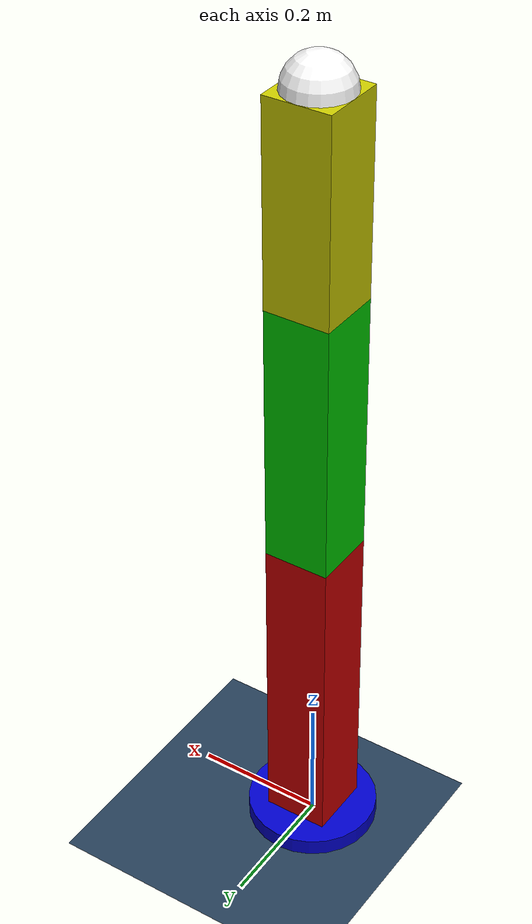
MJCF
<?xml version="1.0"?>
<mujoco model="rrr_scene">
  <include file="rrr.xml"/>
  <visual>
    <headlight diffuse="0.6 0.6 0.6" ambient="0.3 0.3 0.3" specular="0 0 0"/>
    <rgba haze="0.15 0.25 0.35 1"/>
    <global azimuth="120" elevation="-20"/>
  </visual>
  <asset>
    <texture type="skybox" builtin="gradient" rgb1="0.3 0.5 0.7" rgb2="0 0 0" width="512" height="3072"/>
    <texture type="2d" name="groundplane" builtin="checker" mark="edge" rgb1="0.2 0.3 0.4" rgb2="0.1 0.2 0.3" markrgb="0.8 0.8 0.8" width="300" height="300"/>
    <material name="groundplane" texture="groundplane" texuniform="true" texrepeat="5 5" reflectance="0.2"/>
  </asset>
  <worldbody>
    <light pos="0 0 1.5" dir="0 0 -1" directional="true"/>
    <geom name="floor" size="0 0 0.05" type="plane" material="groundplane"/>
  </worldbody>
</mujoco>

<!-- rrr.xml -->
<mujoco model="rrr_robot">
  <compiler angle="radian" inertiafromgeom="true"/>
  <default>
    <default class="joint">
      <joint armature="0.1" damping="1" range="-3.14 3.14"/>
      <general biastype="affine" ctrlrange="-6.28 6.28" dyntype="none" forcerange="-87 87"/>
    </default>
  </default>
  <worldbody>
    <!-- Base -->
    <body gravcomp="1" name="base_link" pos="0 0 0">
      <geom type="cylinder" size="0.1 0.025" rgba="0 0 0.8 1"/>
      <!-- Link 1 -->
      <body gravcomp="1" name="link1" pos="0 0 0.025">
        <joint name="joint1" class="joint" axis="0 0 1"/>
        <geom type="box" size="0.05 0.05 0.25" pos="0 0 0.25" rgba="0.8 0 0 1"/>
        <!-- Link 2 -->
        <body gravcomp="1" name="link2" pos="0 0 0.5">
          <joint name="joint2" class="joint" axis="0 1 0"/>
          <geom type="box" size="0.05 0.05 0.2" pos="0 0 0.2" rgba="0 0.8 0 1"/>
          <!-- Link 3 -->
          <body gravcomp="1" name="link3" pos="0 0 0.4">
            <joint name="joint3" class="joint" axis="0 1 0"/>
            <geom type="box" size="0.05 0.05 0.15" pos="0 0 0.15" rgba="0.8 0.8 0 1"/>
            <!-- End Effector -->
            <body gravcomp="1" name="end_effector" pos="0 0 0.3">
              <geom type="sphere" size="0.05" rgba="1 1 1 1"/>
            </body>
          </body>
        </body>
      </body>
    </body>
  </worldbody>
  <actuator>
    <position class="joint" name="joint1" kp="260" kv="86" joint="joint1"/>
    <position class="joint" name="joint2" kp="260" kv="86" joint="joint2"/>
    <position class="joint" name="joint3" kp="260" kv="86" joint="joint3"/>
  </actuator>
</mujoco>
